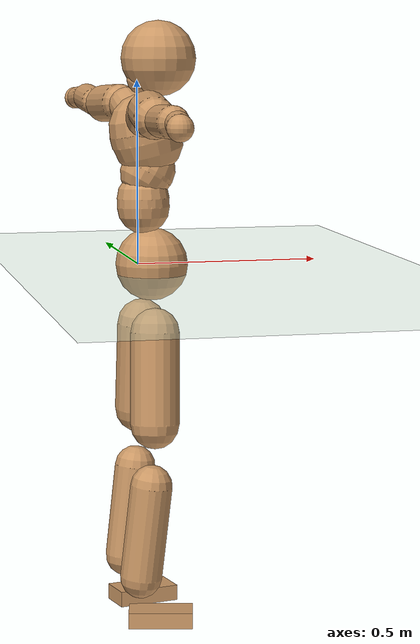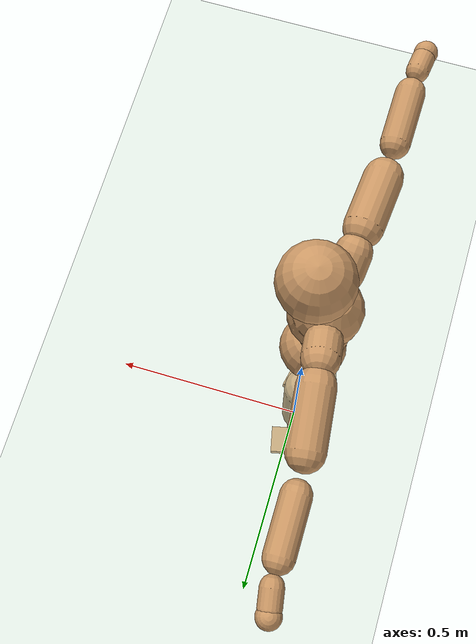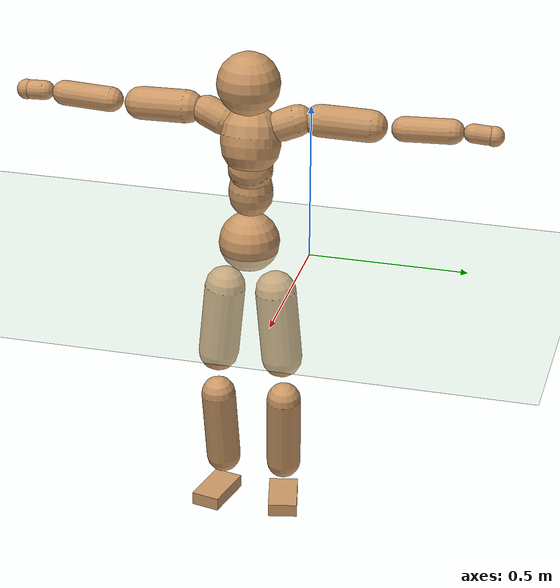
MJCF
<mujoco model="humanoid">
  <compiler coordinate="local" angle="radian"/>
  <default>
    <joint damping="0.0" armature="0.01" stiffness="0.0" limited="true"/>
    <geom conaffinity="1" condim="3" contype="7" margin="0.001" rgba="0.8 0.6 .4 1"/>
  </default>
  <asset>
    <texture type="skybox" builtin="gradient" rgb1=".4 .5 .6" rgb2="0 0 0" width="100" height="100"/>
    <texture builtin="flat" height="1278" mark="cross" markrgb="1 1 1" name="texgeom" random="0.01" rgb1="0.8 0.6 0.4" rgb2="0.8 0.6 0.4" type="cube" width="127"/>
    <texture builtin="checker" height="100" name="texplane" rgb1="0 0 0" rgb2="0.8 0.8 0.8" type="2d" width="100"/>
    <material name="MatPlane" reflectance="0.5" shininess="1" specular="1" texrepeat="60 60" texture="texplane"/>
    <material name="geom" texture="texgeom" texuniform="true"/>
  </asset>
  <worldbody>
    <light cutoff="100" diffuse="1 1 1" dir="-0 0 -1.3" directional="true" exponent="1" pos="0 0 1.3" specular=".1 .1 .1"/>
    <geom conaffinity="1" condim="3" name="floor" pos="0 0 0" rgba="0.8 0.9 0.8 1" size="100 100 .2" type="plane" material="MatPlane"/>
    <body name="Pelvis" pos="-0.0001 -0.1939 0.0247">
      <freejoint name="Pelvis"/>
      <geom type="sphere" contype="1" conaffinity="1" density="500" size="0.0961" pos="0.0000 0.0000 0.0000" name="Pelvis"/>
      <body name="L_Hip" pos="-0.01 0.076 -0.0912">
        <joint name="L_Hip_x" type="hinge" pos="0 0 0" axis="1 0 0" stiffness="800" damping="80" armature="0.02" range="-180.0000 180.0000"/>
        <joint name="L_Hip_y" type="hinge" pos="0 0 0" axis="0 1 0" stiffness="800" damping="80" armature="0.02" range="-180.0000 180.0000"/>
        <joint name="L_Hip_z" type="hinge" pos="0 0 0" axis="0 0 1" stiffness="800" damping="80" armature="0.02" range="-180.0000 180.0000"/>
        <geom type="capsule" contype="1" conaffinity="1" density="500" fromto="-0.0014 0.0068 -0.0790 -0.0056 0.0271 -0.3160" size="0.0654" name="L_Hip"/>
        <body name="L_Knee" pos="-0.0069 0.0339 -0.395">
          <joint name="L_Knee_x" type="hinge" pos="0 0 0" axis="1 0 0" stiffness="800" damping="80" armature="0.02" range="-180.0000 180.0000"/>
          <joint name="L_Knee_y" type="hinge" pos="0 0 0" axis="0 1 0" stiffness="800" damping="80" armature="0.02" range="-180.0000 180.0000"/>
          <joint name="L_Knee_z" type="hinge" pos="0 0 0" axis="0 0 1" stiffness="800" damping="80" armature="0.02" range="-180.0000 180.0000"/>
          <geom type="capsule" contype="1" conaffinity="1" density="500" fromto="-0.0096 -0.0022 -0.0828 -0.0383 -0.0089 -0.3313" size="0.0553" name="L_Knee"/>
          <body name="L_Ankle" pos="-0.0478 -0.0111 -0.4141">
            <joint name="L_Ankle_x" type="hinge" pos="0 0 0" axis="1 0 0" stiffness="800" damping="80" armature="0.02" range="-180.0000 180.0000"/>
            <joint name="L_Ankle_y" type="hinge" pos="0 0 0" axis="0 1 0" stiffness="800" damping="80" armature="0.02" range="-180.0000 180.0000"/>
            <joint name="L_Ankle_z" type="hinge" pos="0 0 0" axis="0 0 1" stiffness="800" damping="80" armature="0.02" range="-180.0000 180.0000"/>
            <geom type="box" contype="1" conaffinity="1" density="500" pos="0.0582 0.0129 -0.0289" size="0.0831 0.0467 0.021" quat="0.9941 0.0000 0.0000 0.1088" name="L_Ankle"/>
            <body name="L_Toe" pos="0.1165 0.0258 -0.0578">
              <joint name="L_Toe_x" type="hinge" pos="0 0 0" axis="1 0 0" stiffness="500" damping="50" armature="0.02" range="-180.0000 180.0000"/>
              <joint name="L_Toe_y" type="hinge" pos="0 0 0" axis="0 1 0" stiffness="500" damping="50" armature="0.02" range="-180.0000 180.0000"/>
              <joint name="L_Toe_z" type="hinge" pos="0 0 0" axis="0 0 1" stiffness="500" damping="50" armature="0.02" range="-180.0000 180.0000"/>
              <geom type="box" contype="1" conaffinity="1" density="500" pos="0.0000 0.0000 0.0285" size="0.0009 0.0023 0.001" quat="0.9934 0.0000 0.0000 0.1150" name="L_Toe"/>
            </body>
          </body>
        </body>
      </body>
      <body name="R_Hip" pos="-0.0061 -0.074 -0.0903">
        <joint name="R_Hip_x" type="hinge" pos="0 0 0" axis="1 0 0" stiffness="800" damping="80" armature="0.02" range="-180.0000 180.0000"/>
        <joint name="R_Hip_y" type="hinge" pos="0 0 0" axis="0 1 0" stiffness="800" damping="80" armature="0.02" range="-180.0000 180.0000"/>
        <joint name="R_Hip_z" type="hinge" pos="0 0 0" axis="0 0 1" stiffness="800" damping="80" armature="0.02" range="-180.0000 180.0000"/>
        <geom type="capsule" contype="1" conaffinity="1" density="500" fromto="-0.0019 -0.0081 -0.0802 -0.0078 -0.0323 -0.3208" size="0.0646" name="R_Hip"/>
        <body name="R_Knee" pos="-0.0097 -0.0404 -0.401">
          <joint name="R_Knee_x" type="hinge" pos="0 0 0" axis="1 0 0" stiffness="800" damping="80" armature="0.02" range="-180.0000 180.0000"/>
          <joint name="R_Knee_y" type="hinge" pos="0 0 0" axis="0 1 0" stiffness="800" damping="80" armature="0.02" range="-180.0000 180.0000"/>
          <joint name="R_Knee_z" type="hinge" pos="0 0 0" axis="0 0 1" stiffness="800" damping="80" armature="0.02" range="-180.0000 180.0000"/>
          <geom type="capsule" contype="1" conaffinity="1" density="500" fromto="-0.0092 0.0029 -0.0830 -0.0366 0.0115 -0.3320" size="0.0554" name="R_Knee"/>
          <body name="R_Ankle" pos="-0.0458 0.0144 -0.415">
            <joint name="R_Ankle_x" type="hinge" pos="0 0 0" axis="1 0 0" stiffness="800" damping="80" armature="0.02" range="-180.0000 180.0000"/>
            <joint name="R_Ankle_y" type="hinge" pos="0 0 0" axis="0 1 0" stiffness="800" damping="80" armature="0.02" range="-180.0000 180.0000"/>
            <joint name="R_Ankle_z" type="hinge" pos="0 0 0" axis="0 0 1" stiffness="800" damping="80" armature="0.02" range="-180.0000 180.0000"/>
            <geom type="box" contype="1" conaffinity="1" density="500" pos="0.0601 -0.0131 -0.0251" size="0.0844 0.0464 0.0212" quat="0.9943 0.0000 0.0000 -0.1069" name="R_Ankle"/>
            <body name="R_Toe" pos="0.1203 -0.0262 -0.0501">
              <joint name="R_Toe_x" type="hinge" pos="0 0 0" axis="1 0 0" stiffness="500" damping="50" armature="0.02" range="-180.0000 180.0000"/>
              <joint name="R_Toe_y" type="hinge" pos="0 0 0" axis="0 1 0" stiffness="500" damping="50" armature="0.02" range="-180.0000 180.0000"/>
              <joint name="R_Toe_z" type="hinge" pos="0 0 0" axis="0 0 1" stiffness="500" damping="50" armature="0.02" range="-180.0000 180.0000"/>
              <geom type="box" contype="1" conaffinity="1" density="500" pos="0.0000 0.0000 0.0265" size="0.0009 0.0023 0.0011" quat="0.9952 0.0000 0.0000 -0.0974" name="R_Toe"/>
            </body>
          </body>
        </body>
      </body>
      <body name="Torso" pos="-0.0213 -0.002 0.1034">
        <joint name="Torso_x" type="hinge" pos="0 0 0" axis="1 0 0" stiffness="1000" damping="100" armature="0.02" range="-180.0000 180.0000"/>
        <joint name="Torso_y" type="hinge" pos="0 0 0" axis="0 1 0" stiffness="1000" damping="100" armature="0.02" range="-180.0000 180.0000"/>
        <joint name="Torso_z" type="hinge" pos="0 0 0" axis="0 0 1" stiffness="1000" damping="100" armature="0.02" range="-180.0000 180.0000"/>
        <geom type="capsule" contype="1" conaffinity="1" density="500" fromto="-0.0009 0.0017 0.0710 -0.0006 0.0011 0.0473" size="0.0693" name="Torso"/>
        <body name="Spine" pos="-0.0016 0.0028 0.1184">
          <joint name="Spine_x" type="hinge" pos="0 0 0" axis="1 0 0" stiffness="1000" damping="100" armature="0.02" range="-180.0000 180.0000"/>
          <joint name="Spine_y" type="hinge" pos="0 0 0" axis="0 1 0" stiffness="1000" damping="100" armature="0.02" range="-180.0000 180.0000"/>
          <joint name="Spine_z" type="hinge" pos="0 0 0" axis="0 0 1" stiffness="1000" damping="100" armature="0.02" range="-180.0000 180.0000"/>
          <geom type="capsule" contype="1" conaffinity="1" density="500" fromto="0.0168 0.0009 0.0284 0.0112 0.0006 0.0190" size="0.0704" name="Spine"/>
          <body name="Chest" pos="0.028 0.0014 0.0474">
            <joint name="Chest_x" type="hinge" pos="0 0 0" axis="1 0 0" stiffness="1000" damping="100" armature="0.02" range="-180.0000 180.0000"/>
            <joint name="Chest_y" type="hinge" pos="0 0 0" axis="0 1 0" stiffness="1000" damping="100" armature="0.02" range="-180.0000 180.0000"/>
            <joint name="Chest_z" type="hinge" pos="0 0 0" axis="0 0 1" stiffness="1000" damping="100" armature="0.02" range="-180.0000 180.0000"/>
            <geom type="capsule" contype="1" conaffinity="1" density="500" fromto="-0.0224 -0.0009 0.0859 -0.0149 -0.0006 0.0573" size="0.0948" name="Chest"/>
            <body name="Neck" pos="-0.0394 -0.0025 0.2036">
              <joint name="Neck_x" type="hinge" pos="0 0 0" axis="1 0 0" stiffness="500" damping="50" armature="0.02" range="-180.0000 180.0000"/>
              <joint name="Neck_y" type="hinge" pos="0 0 0" axis="0 1 0" stiffness="500" damping="50" armature="0.02" range="-180.0000 180.0000"/>
              <joint name="Neck_z" type="hinge" pos="0 0 0" axis="0 0 1" stiffness="500" damping="50" armature="0.02" range="-180.0000 180.0000"/>
              <geom type="capsule" contype="1" conaffinity="1" density="500" fromto="0.0110 0.0008 0.0132 0.0438 0.0031 0.0527" size="0.0407" name="Neck"/>
              <body name="Head" pos="0.0548 0.0039 0.0659">
                <joint name="Head_x" type="hinge" pos="0 0 0" axis="1 0 0" stiffness="500" damping="50" armature="0.02" range="-180.0000 180.0000"/>
                <joint name="Head_y" type="hinge" pos="0 0 0" axis="0 1 0" stiffness="500" damping="50" armature="0.02" range="-180.0000 180.0000"/>
                <joint name="Head_z" type="hinge" pos="0 0 0" axis="0 0 1" stiffness="500" damping="50" armature="0.02" range="-180.0000 180.0000"/>
                <geom type="sphere" contype="1" conaffinity="1" density="500" size="0.0988" pos="0.0000 0.0000 0.0000" name="Head"/>
              </body>
            </body>
            <body name="L_Thorax" pos="-0.0337 0.0752 0.1138">
              <joint name="L_Thorax_x" type="hinge" pos="0 0 0" axis="1 0 0" stiffness="500" damping="50" armature="0.02" range="-180.0000 180.0000"/>
              <joint name="L_Thorax_y" type="hinge" pos="0 0 0" axis="0 1 0" stiffness="500" damping="50" armature="0.02" range="-180.0000 180.0000"/>
              <joint name="L_Thorax_z" type="hinge" pos="0 0 0" axis="0 0 1" stiffness="500" damping="50" armature="0.02" range="-180.0000 180.0000"/>
              <geom type="capsule" contype="1" conaffinity="1" density="500" fromto="-0.0018 0.0165 0.0068 -0.0072 0.0659 0.0272" size="0.0495" name="L_Thorax"/>
              <body name="L_Shoulder" pos="-0.009 0.0823 0.034">
                <joint name="L_Shoulder_x" type="hinge" pos="0 0 0" axis="1 0 0" stiffness="500" damping="50" armature="0.02" range="-720.0000 720.0000"/>
                <joint name="L_Shoulder_y" type="hinge" pos="0 0 0" axis="0 1 0" stiffness="500" damping="50" armature="0.02" range="-720.0000 720.0000"/>
                <joint name="L_Shoulder_z" type="hinge" pos="0 0 0" axis="0 0 1" stiffness="500" damping="50" armature="0.02" range="-720.0000 720.0000"/>
                <geom type="capsule" contype="1" conaffinity="1" density="500" fromto="-0.0058 0.0520 -0.0031 -0.0233 0.2079 -0.0123" size="0.0507" name="L_Shoulder"/>
                <body name="L_Elbow" pos="-0.0292 0.2599 -0.0153">
                  <joint name="L_Elbow_x" type="hinge" pos="0 0 0" axis="1 0 0" stiffness="500" damping="50" armature="0.02" range="-720.0000 720.0000"/>
                  <joint name="L_Elbow_y" type="hinge" pos="0 0 0" axis="0 1 0" stiffness="500" damping="50" armature="0.02" range="-720.0000 720.0000"/>
                  <joint name="L_Elbow_z" type="hinge" pos="0 0 0" axis="0 0 1" stiffness="500" damping="50" armature="0.02" range="-720.0000 720.0000"/>
                  <geom type="capsule" contype="1" conaffinity="1" density="500" fromto="-0.0001 0.0490 0.0023 -0.0005 0.1959 0.0091" size="0.0391" name="L_Elbow"/>
                  <body name="L_Wrist" pos="-0.0006 0.2449 0.0114">
                    <joint name="L_Wrist_x" type="hinge" pos="0 0 0" axis="1 0 0" stiffness="300" damping="30" armature="0.02" range="-180.0000 180.0000"/>
                    <joint name="L_Wrist_y" type="hinge" pos="0 0 0" axis="0 1 0" stiffness="300" damping="30" armature="0.02" range="-180.0000 180.0000"/>
                    <joint name="L_Wrist_z" type="hinge" pos="0 0 0" axis="0 0 1" stiffness="300" damping="30" armature="0.02" range="-180.0000 180.0000"/>
                    <geom type="capsule" contype="1" conaffinity="1" density="500" fromto="-0.0026 0.0157 -0.0019 -0.0105 0.0626 -0.0077" size="0.0296" name="L_Wrist"/>
                    <body name="L_Hand" pos="-0.0131 0.0783 -0.0097">
                      <joint name="L_Hand_x" type="hinge" pos="0 0 0" axis="1 0 0" stiffness="300" damping="30" armature="0.02" range="-180.0000 180.0000"/>
                      <joint name="L_Hand_y" type="hinge" pos="0 0 0" axis="0 1 0" stiffness="300" damping="30" armature="0.02" range="-180.0000 180.0000"/>
                      <joint name="L_Hand_z" type="hinge" pos="0 0 0" axis="0 0 1" stiffness="300" damping="30" armature="0.02" range="-180.0000 180.0000"/>
                      <geom type="sphere" contype="1" conaffinity="1" density="500" size="0.0315" pos="0.0000 0.0000 0.0000" name="L_Hand"/>
                    </body>
                  </body>
                </body>
              </body>
            </body>
            <body name="R_Thorax" pos="-0.0389 -0.0772 0.1123">
              <joint name="R_Thorax_x" type="hinge" pos="0 0 0" axis="1 0 0" stiffness="500" damping="50" armature="0.02" range="-180.0000 180.0000"/>
              <joint name="R_Thorax_y" type="hinge" pos="0 0 0" axis="0 1 0" stiffness="500" damping="50" armature="0.02" range="-180.0000 180.0000"/>
              <joint name="R_Thorax_z" type="hinge" pos="0 0 0" axis="0 0 1" stiffness="500" damping="50" armature="0.02" range="-180.0000 180.0000"/>
              <geom type="capsule" contype="1" conaffinity="1" density="500" fromto="-0.0020 -0.0171 0.0071 -0.0080 -0.0685 0.0285" size="0.0485" name="R_Thorax"/>
              <body name="R_Shoulder" pos="-0.01 -0.0857 0.0356">
                <joint name="R_Shoulder_x" type="hinge" pos="0 0 0" axis="1 0 0" stiffness="500" damping="50" armature="0.02" range="-720.0000 720.0000"/>
                <joint name="R_Shoulder_y" type="hinge" pos="0 0 0" axis="0 1 0" stiffness="500" damping="50" armature="0.02" range="-720.0000 720.0000"/>
                <joint name="R_Shoulder_z" type="hinge" pos="0 0 0" axis="0 0 1" stiffness="500" damping="50" armature="0.02" range="-720.0000 720.0000"/>
                <geom type="capsule" contype="1" conaffinity="1" density="500" fromto="-0.0047 -0.0506 -0.0032 -0.0190 -0.2026 -0.0127" size="0.0522" name="R_Shoulder"/>
                <body name="R_Elbow" pos="-0.0237 -0.2532 -0.0158">
                  <joint name="R_Elbow_x" type="hinge" pos="0 0 0" axis="1 0 0" stiffness="500" damping="50" armature="0.02" range="-720.0000 720.0000"/>
                  <joint name="R_Elbow_y" type="hinge" pos="0 0 0" axis="0 1 0" stiffness="500" damping="50" armature="0.02" range="-720.0000 720.0000"/>
                  <joint name="R_Elbow_z" type="hinge" pos="0 0 0" axis="0 0 1" stiffness="500" damping="50" armature="0.02" range="-720.0000 720.0000"/>
                  <geom type="capsule" contype="1" conaffinity="1" density="500" fromto="-0.0008 -0.0507 0.0020 -0.0032 -0.2028 0.0078" size="0.0395" name="R_Elbow"/>
                  <body name="R_Wrist" pos="-0.0039 -0.2535 0.0098">
                    <joint name="R_Wrist_x" type="hinge" pos="0 0 0" axis="1 0 0" stiffness="300" damping="30" armature="0.02" range="-180.0000 180.0000"/>
                    <joint name="R_Wrist_y" type="hinge" pos="0 0 0" axis="0 1 0" stiffness="300" damping="30" armature="0.02" range="-180.0000 180.0000"/>
                    <joint name="R_Wrist_z" type="hinge" pos="0 0 0" axis="0 0 1" stiffness="300" damping="30" armature="0.02" range="-180.0000 180.0000"/>
                    <geom type="capsule" contype="1" conaffinity="1" density="500" fromto="-0.0021 -0.0159 -0.0015 -0.0083 -0.0634 -0.0058" size="0.0305" name="R_Wrist"/>
                    <body name="R_Hand" pos="-0.0104 -0.0793 -0.0073">
                      <joint name="R_Hand_x" type="hinge" pos="0 0 0" axis="1 0 0" stiffness="300" damping="30" armature="0.02" range="-180.0000 180.0000"/>
                      <joint name="R_Hand_y" type="hinge" pos="0 0 0" axis="0 1 0" stiffness="300" damping="30" armature="0.02" range="-180.0000 180.0000"/>
                      <joint name="R_Hand_z" type="hinge" pos="0 0 0" axis="0 0 1" stiffness="300" damping="30" armature="0.02" range="-180.0000 180.0000"/>
                      <geom type="sphere" contype="1" conaffinity="1" density="500" size="0.0319" pos="0.0000 0.0000 0.0000" name="R_Hand"/>
                    </body>
                  </body>
                </body>
              </body>
            </body>
          </body>
        </body>
      </body>
    </body>
  </worldbody>
  <actuator>
    <motor name="L_Hip_x" joint="L_Hip_x" gear="500"/>
    <motor name="L_Hip_y" joint="L_Hip_y" gear="500"/>
    <motor name="L_Hip_z" joint="L_Hip_z" gear="500"/>
    <motor name="L_Knee_x" joint="L_Knee_x" gear="500"/>
    <motor name="L_Knee_y" joint="L_Knee_y" gear="500"/>
    <motor name="L_Knee_z" joint="L_Knee_z" gear="500"/>
    <motor name="L_Ankle_x" joint="L_Ankle_x" gear="500"/>
    <motor name="L_Ankle_y" joint="L_Ankle_y" gear="500"/>
    <motor name="L_Ankle_z" joint="L_Ankle_z" gear="500"/>
    <motor name="L_Toe_x" joint="L_Toe_x" gear="500"/>
    <motor name="L_Toe_y" joint="L_Toe_y" gear="500"/>
    <motor name="L_Toe_z" joint="L_Toe_z" gear="500"/>
    <motor name="R_Hip_x" joint="R_Hip_x" gear="500"/>
    <motor name="R_Hip_y" joint="R_Hip_y" gear="500"/>
    <motor name="R_Hip_z" joint="R_Hip_z" gear="500"/>
    <motor name="R_Knee_x" joint="R_Knee_x" gear="500"/>
    <motor name="R_Knee_y" joint="R_Knee_y" gear="500"/>
    <motor name="R_Knee_z" joint="R_Knee_z" gear="500"/>
    <motor name="R_Ankle_x" joint="R_Ankle_x" gear="500"/>
    <motor name="R_Ankle_y" joint="R_Ankle_y" gear="500"/>
    <motor name="R_Ankle_z" joint="R_Ankle_z" gear="500"/>
    <motor name="R_Toe_x" joint="R_Toe_x" gear="500"/>
    <motor name="R_Toe_y" joint="R_Toe_y" gear="500"/>
    <motor name="R_Toe_z" joint="R_Toe_z" gear="500"/>
    <motor name="Torso_x" joint="Torso_x" gear="500"/>
    <motor name="Torso_y" joint="Torso_y" gear="500"/>
    <motor name="Torso_z" joint="Torso_z" gear="500"/>
    <motor name="Spine_x" joint="Spine_x" gear="500"/>
    <motor name="Spine_y" joint="Spine_y" gear="500"/>
    <motor name="Spine_z" joint="Spine_z" gear="500"/>
    <motor name="Chest_x" joint="Chest_x" gear="500"/>
    <motor name="Chest_y" joint="Chest_y" gear="500"/>
    <motor name="Chest_z" joint="Chest_z" gear="500"/>
    <motor name="Neck_x" joint="Neck_x" gear="500"/>
    <motor name="Neck_y" joint="Neck_y" gear="500"/>
    <motor name="Neck_z" joint="Neck_z" gear="500"/>
    <motor name="Head_x" joint="Head_x" gear="500"/>
    <motor name="Head_y" joint="Head_y" gear="500"/>
    <motor name="Head_z" joint="Head_z" gear="500"/>
    <motor name="L_Thorax_x" joint="L_Thorax_x" gear="500"/>
    <motor name="L_Thorax_y" joint="L_Thorax_y" gear="500"/>
    <motor name="L_Thorax_z" joint="L_Thorax_z" gear="500"/>
    <motor name="L_Shoulder_x" joint="L_Shoulder_x" gear="500"/>
    <motor name="L_Shoulder_y" joint="L_Shoulder_y" gear="500"/>
    <motor name="L_Shoulder_z" joint="L_Shoulder_z" gear="500"/>
    <motor name="L_Elbow_x" joint="L_Elbow_x" gear="500"/>
    <motor name="L_Elbow_y" joint="L_Elbow_y" gear="500"/>
    <motor name="L_Elbow_z" joint="L_Elbow_z" gear="500"/>
    <motor name="L_Wrist_x" joint="L_Wrist_x" gear="500"/>
    <motor name="L_Wrist_y" joint="L_Wrist_y" gear="500"/>
    <motor name="L_Wrist_z" joint="L_Wrist_z" gear="500"/>
    <motor name="L_Hand_x" joint="L_Hand_x" gear="500"/>
    <motor name="L_Hand_y" joint="L_Hand_y" gear="500"/>
    <motor name="L_Hand_z" joint="L_Hand_z" gear="500"/>
    <motor name="R_Thorax_x" joint="R_Thorax_x" gear="500"/>
    <motor name="R_Thorax_y" joint="R_Thorax_y" gear="500"/>
    <motor name="R_Thorax_z" joint="R_Thorax_z" gear="500"/>
    <motor name="R_Shoulder_x" joint="R_Shoulder_x" gear="500"/>
    <motor name="R_Shoulder_y" joint="R_Shoulder_y" gear="500"/>
    <motor name="R_Shoulder_z" joint="R_Shoulder_z" gear="500"/>
    <motor name="R_Elbow_x" joint="R_Elbow_x" gear="500"/>
    <motor name="R_Elbow_y" joint="R_Elbow_y" gear="500"/>
    <motor name="R_Elbow_z" joint="R_Elbow_z" gear="500"/>
    <motor name="R_Wrist_x" joint="R_Wrist_x" gear="500"/>
    <motor name="R_Wrist_y" joint="R_Wrist_y" gear="500"/>
    <motor name="R_Wrist_z" joint="R_Wrist_z" gear="500"/>
    <motor name="R_Hand_x" joint="R_Hand_x" gear="500"/>
    <motor name="R_Hand_y" joint="R_Hand_y" gear="500"/>
    <motor name="R_Hand_z" joint="R_Hand_z" gear="500"/>
  </actuator>
  <contact>
    <exclude body1="Torso" body2="Chest"/>
    <exclude body1="Head" body2="Chest"/>
    <exclude body1="R_Knee" body2="R_Toe"/>
    <exclude body1="R_Knee" body2="L_Ankle"/>
    <exclude body1="R_Knee" body2="L_Toe"/>
    <exclude body1="L_Knee" body2="L_Toe"/>
    <exclude body1="L_Knee" body2="R_Ankle"/>
    <exclude body1="L_Knee" body2="R_Toe"/>
    <exclude body1="L_Shoulder" body2="Chest"/>
    <exclude body1="R_Shoulder" body2="Chest"/>
  </contact>
  <sensor/>
  <size njmax="700" nconmax="700"/>
</mujoco>
